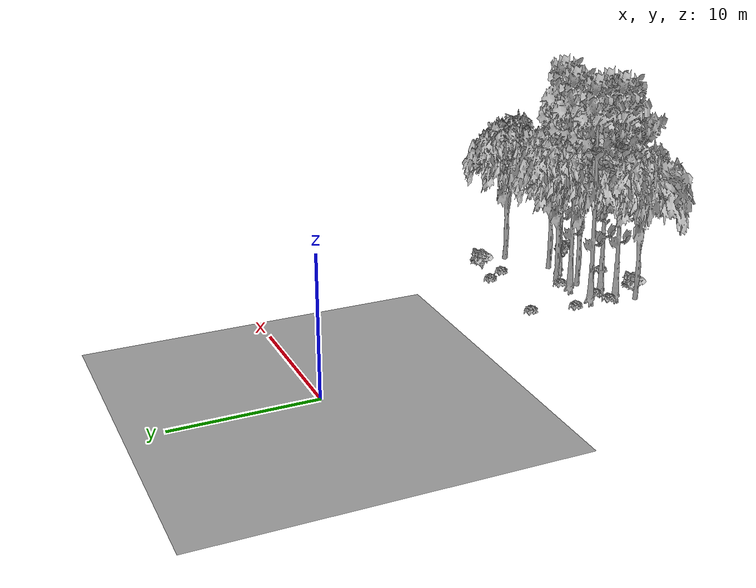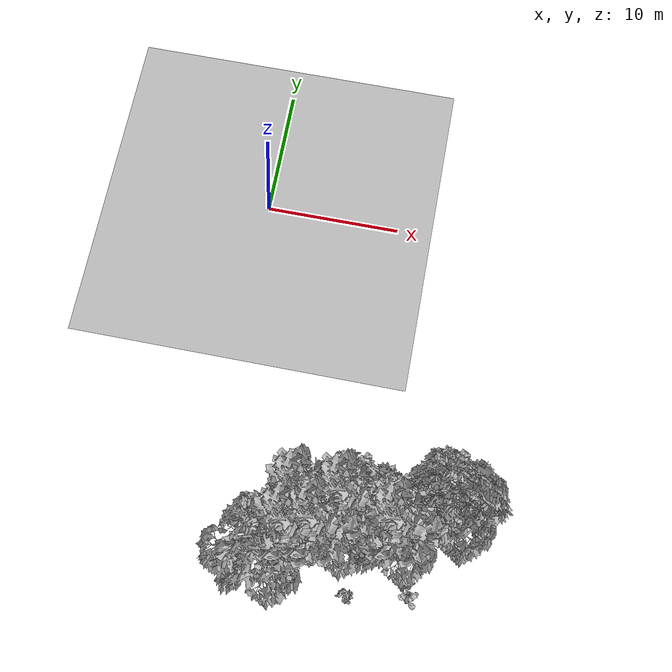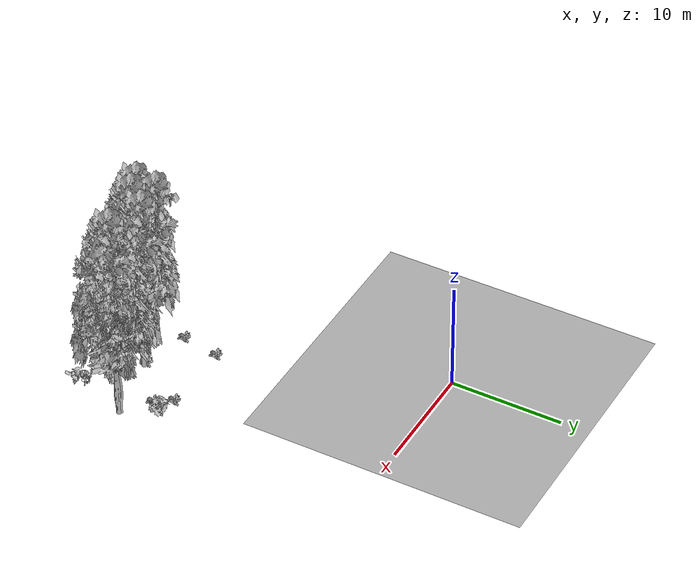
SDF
<sdf version="1.7">
 <world name="default">
  <model name="ground_plane">
   <static>1</static>
   <link name="link">
    <collision name="collision">
     <pose>-50 0 0 0 -0 0</pose>
     <geometry><plane><normal>0 0 1</normal><size>80 80</size></plane></geometry>
     <surface><contact><ode><min_depth>0.01</min_depth><max_vel>0</max_vel></ode></contact></surface>
    </collision>
    <visual name="grass">
     <cast_shadows>0</cast_shadows>
     <geometry>
      <mesh>
       <scale>0.46714285714285714 0.46714285714285714 0.1</scale>
       <uri>file://grass_plane/meshes/grass_plane.dae</uri>
      </mesh>
     </geometry>
    </visual>
   </link>
  </model>
  <model name="Tree 2">
   <static>1</static>
   <pose>12.744392342214496 -25.10153390467923 0 1.57079 -0 0</pose>
   <link name="link">
    <collision name="collision">
     <geometry><mesh><scale>3.5 5 3.5</scale><uri>model://tree_9/meshes/tree_9.obj</uri></mesh></geometry>
    </collision>
    <visual name="visual">
     <geometry><mesh><scale>3.5 5 3.5</scale><uri>model://tree_9/meshes/tree_9.obj</uri></mesh></geometry>
    </visual>
   </link>
  </model>
  <model name="Tree 11">
   <static>1</static>
   <pose>16.34194853640159 -22.23036959908649 0 1.57079 -0 0</pose>
   <link name="link">
    <collision name="collision">
     <geometry><mesh><scale>3.5 5 3.5</scale><uri>model://tree_2/meshes/tree_2.obj</uri></mesh></geometry>
    </collision>
    <visual name="visual">
     <geometry><mesh><scale>3.5 5 3.5</scale><uri>model://tree_2/meshes/tree_2.obj</uri></mesh></geometry>
    </visual>
   </link>
  </model>
  <model name="Tree 13">
   <static>1</static>
   <pose>10.382277022149914 -23.49084186077171 0 1.57079 -0 0</pose>
   <link name="link">
    <collision name="collision">
     <geometry><mesh><scale>3.5 5 3.5</scale><uri>model://tree_2/meshes/tree_2.obj</uri></mesh></geometry>
    </collision>
    <visual name="visual">
     <geometry><mesh><scale>3.5 5 3.5</scale><uri>model://tree_2/meshes/tree_2.obj</uri></mesh></geometry>
    </visual>
   </link>
  </model>
  <model name="Tree 47">
   <static>1</static>
   <pose>7.984489069863258 -25.958848382439346 0 1.57079 -0 0</pose>
   <link name="link">
    <collision name="collision">
     <geometry><mesh><scale>3.5 5 3.5</scale><uri>model://tree_9/meshes/tree_9.obj</uri></mesh></geometry>
    </collision>
    <visual name="visual">
     <geometry><mesh><scale>3.5 5 3.5</scale><uri>model://tree_9/meshes/tree_9.obj</uri></mesh></geometry>
    </visual>
   </link>
  </model>
  <model name="Tree 90">
   <static>1</static>
   <pose>12.962560495693587 -24.341436144492626 0 1.57079 -0 0</pose>
   <link name="link">
    <collision name="collision">
     <geometry><mesh><scale>3.5 5 3.5</scale><uri>model://tree_2/meshes/tree_2.obj</uri></mesh></geometry>
    </collision>
    <visual name="visual">
     <geometry><mesh><scale>3.5 5 3.5</scale><uri>model://tree_2/meshes/tree_2.obj</uri></mesh></geometry>
    </visual>
   </link>
  </model>
  <model name="Tree 128">
   <static>1</static>
   <pose>6.838387620289794 -24.32918038902857 0 1.57079 -0 0</pose>
   <link name="link">
    <collision name="collision">
     <geometry><mesh><scale>3.5 5 3.5</scale><uri>model://tree_9/meshes/tree_9.obj</uri></mesh></geometry>
    </collision>
    <visual name="visual">
     <geometry><mesh><scale>3.5 5 3.5</scale><uri>model://tree_9/meshes/tree_9.obj</uri></mesh></geometry>
    </visual>
   </link>
  </model>
  <model name="Tree 174">
   <static>1</static>
   <pose>16.169937500175777 -22.142156906037663 0 1.57079 -0 0</pose>
   <link name="link">
    <collision name="collision">
     <geometry><mesh><scale>3.5 5 3.5</scale><uri>model://tree_2/meshes/tree_2.obj</uri></mesh></geometry>
    </collision>
    <visual name="visual">
     <geometry><mesh><scale>3.5 5 3.5</scale><uri>model://tree_2/meshes/tree_2.obj</uri></mesh></geometry>
    </visual>
   </link>
  </model>
  <model name="Tree 244">
   <static>1</static>
   <pose>9.441068146485385 -24.106463783590986 0 1.57079 -0 0</pose>
   <link name="link">
    <collision name="collision">
     <geometry><mesh><scale>3.5 5 3.5</scale><uri>model://tree_9/meshes/tree_9.obj</uri></mesh></geometry>
    </collision>
    <visual name="visual">
     <geometry><mesh><scale>3.5 5 3.5</scale><uri>model://tree_9/meshes/tree_9.obj</uri></mesh></geometry>
    </visual>
   </link>
  </model>
  <model name="Tree 333">
   <static>1</static>
   <pose>9.058644269067315 -24.56449136654748 0 1.57079 -0 0</pose>
   <link name="link">
    <collision name="collision">
     <geometry><mesh><scale>3.5 5 3.5</scale><uri>model://tree_2/meshes/tree_2.obj</uri></mesh></geometry>
    </collision>
    <visual name="visual">
     <geometry><mesh><scale>3.5 5 3.5</scale><uri>model://tree_2/meshes/tree_2.obj</uri></mesh></geometry>
    </visual>
   </link>
  </model>
  <model name="Tree 579">
   <static>1</static>
   <pose>6.544877035802159 -26.361521125193335 0 1.57079 -0 0</pose>
   <link name="link">
    <collision name="collision">
     <geometry><mesh><scale>3.5 5 3.5</scale><uri>model://tree_9/meshes/tree_9.obj</uri></mesh></geometry>
    </collision>
    <visual name="visual">
     <geometry><mesh><scale>3.5 5 3.5</scale><uri>model://tree_9/meshes/tree_9.obj</uri></mesh></geometry>
    </visual>
   </link>
  </model>
  <model name="Tree 591">
   <static>1</static>
   <pose>4.987603174621704 -27.198433542513307 0 1.57079 -0 0</pose>
   <link name="link">
    <collision name="collision">
     <geometry><mesh><scale>3.5 5 3.5</scale><uri>model://tree_2/meshes/tree_2.obj</uri></mesh></geometry>
    </collision>
    <visual name="visual">
     <geometry><mesh><scale>3.5 5 3.5</scale><uri>model://tree_2/meshes/tree_2.obj</uri></mesh></geometry>
    </visual>
   </link>
  </model>
  <model name="Bush 173">
   <static>1</static>
   <pose>12.864099585674701 -19.053627420941837 0 1.57079 -0 0</pose>
   <link name="link">
    <collision name="collision">
     <geometry><mesh><scale>2 2 2</scale><uri>model://bush_2/meshes/bush_2.obj</uri></mesh></geometry>
     <surface><contact><collide_without_contact>false</collide_without_contact></contact></surface>
    </collision>
    <visual name="visual">
     <geometry><mesh><scale>2 2 2</scale><uri>model://bush_2/meshes/bush_2.obj</uri></mesh></geometry>
    </visual>
   </link>
  </model>
  <model name="Bush 202">
   <static>1</static>
   <pose>15.014247592786695 -19.391873009852105 0 1.57079 -0 0</pose>
   <link name="link">
    <collision name="collision">
     <geometry><mesh><scale>2 2 2</scale><uri>model://bush_1/meshes/bush_1.obj</uri></mesh></geometry>
     <surface><contact><collide_without_contact>false</collide_without_contact></contact></surface>
    </collision>
    <visual name="visual">
     <geometry><mesh><scale>2 2 2</scale><uri>model://bush_1/meshes/bush_1.obj</uri></mesh></geometry>
    </visual>
   </link>
  </model>
  <model name="Bush 236">
   <static>1</static>
   <pose>5.862133042076415 -25.402072783838126 0 1.57079 -0 0</pose>
   <link name="link">
    <collision name="collision">
     <geometry><mesh><scale>2 2 2</scale><uri>model://bush_2/meshes/bush_2.obj</uri></mesh></geometry>
     <surface><contact><collide_without_contact>false</collide_without_contact></contact></surface>
    </collision>
    <visual name="visual">
     <geometry><mesh><scale>2 2 2</scale><uri>model://bush_2/meshes/bush_2.obj</uri></mesh></geometry>
    </visual>
   </link>
  </model>
  <model name="Bush 253">
   <static>1</static>
   <pose>9.882112323584522 -23.54231057410436 0 1.57079 -0 0</pose>
   <link name="link">
    <collision name="collision">
     <geometry><mesh><scale>2 2 2</scale><uri>model://bush_2/meshes/bush_2.obj</uri></mesh></geometry>
     <surface><contact><collide_without_contact>false</collide_without_contact></contact></surface>
    </collision>
    <visual name="visual">
     <geometry><mesh><scale>2 2 2</scale><uri>model://bush_2/meshes/bush_2.obj</uri></mesh></geometry>
    </visual>
   </link>
  </model>
  <model name="Bush 279">
   <static>1</static>
   <pose>6.308388783128059 -18.971969379460685 0 1.57079 -0 0</pose>
   <link name="link">
    <collision name="collision">
     <geometry><mesh><scale>2 2 2</scale><uri>model://bush_2/meshes/bush_2.obj</uri></mesh></geometry>
     <surface><contact><collide_without_contact>false</collide_without_contact></contact></surface>
    </collision>
    <visual name="visual">
     <geometry><mesh><scale>2 2 2</scale><uri>model://bush_2/meshes/bush_2.obj</uri></mesh></geometry>
    </visual>
   </link>
  </model>
  <model name="Bush 301">
   <static>1</static>
   <pose>7.100841650077122 -24.96152828384521 0 1.57079 -0 0</pose>
   <link name="link">
    <collision name="collision">
     <geometry><mesh><scale>2 2 2</scale><uri>model://bush_2/meshes/bush_2.obj</uri></mesh></geometry>
     <surface><contact><collide_without_contact>false</collide_without_contact></contact></surface>
    </collision>
    <visual name="visual">
     <geometry><mesh><scale>2 2 2</scale><uri>model://bush_2/meshes/bush_2.obj</uri></mesh></geometry>
    </visual>
   </link>
  </model>
  <model name="Bush 399">
   <static>1</static>
   <pose>14.60109947342955 -26.512040462163817 0 1.57079 -0 0</pose>
   <link name="link">
    <collision name="collision">
     <geometry><mesh><scale>2 2 2</scale><uri>model://bush_4/meshes/bush_4.obj</uri></mesh></geometry>
     <surface><contact><collide_without_contact>false</collide_without_contact></contact></surface>
    </collision>
    <visual name="visual">
     <geometry><mesh><scale>2 2 2</scale><uri>model://bush_4/meshes/bush_4.obj</uri></mesh></geometry>
    </visual>
   </link>
  </model>
  <model name="Bush 423">
   <static>1</static>
   <pose>15.15129815013644 -27.269312132755744 0 1.57079 -0 0</pose>
   <link name="link">
    <collision name="collision">
     <geometry><mesh><scale>2 2 2</scale><uri>model://bush_0/meshes/bush_0.obj</uri></mesh></geometry>
     <surface><contact><collide_without_contact>false</collide_without_contact></contact></surface>
    </collision>
    <visual name="visual">
     <geometry><mesh><scale>2 2 2</scale><uri>model://bush_0/meshes/bush_0.obj</uri></mesh></geometry>
    </visual>
   </link>
  </model>
  <model name="Bush 452">
   <static>1</static>
   <pose>10.83828504325735 -27.84330242854469 0 1.57079 -0 0</pose>
   <link name="link">
    <collision name="collision">
     <geometry><mesh><scale>2 2 2</scale><uri>model://bush_2/meshes/bush_2.obj</uri></mesh></geometry>
     <surface><contact><collide_without_contact>false</collide_without_contact></contact></surface>
    </collision>
    <visual name="visual">
     <geometry><mesh><scale>2 2 2</scale><uri>model://bush_2/meshes/bush_2.obj</uri></mesh></geometry>
    </visual>
   </link>
  </model>
  <model name="Bush 548">
   <static>1</static>
   <pose>5.6853314267102135 -22.417798615222956 0 1.57079 -0 0</pose>
   <link name="link">
    <collision name="collision">
     <geometry><mesh><scale>2 2 2</scale><uri>model://bush_2/meshes/bush_2.obj</uri></mesh></geometry>
     <surface><contact><collide_without_contact>false</collide_without_contact></contact></surface>
    </collision>
    <visual name="visual">
     <geometry><mesh><scale>2 2 2</scale><uri>model://bush_2/meshes/bush_2.obj</uri></mesh></geometry>
    </visual>
   </link>
  </model>
  <model name="Bush 581">
   <static>1</static>
   <pose>13.833702167424264 -20.520416871407498 0 1.57079 -0 0</pose>
   <link name="link">
    <collision name="collision">
     <geometry><mesh><scale>2 2 2</scale><uri>model://bush_2/meshes/bush_2.obj</uri></mesh></geometry>
     <surface><contact><collide_without_contact>false</collide_without_contact></contact></surface>
    </collision>
    <visual name="visual">
     <geometry><mesh><scale>2 2 2</scale><uri>model://bush_2/meshes/bush_2.obj</uri></mesh></geometry>
    </visual>
   </link>
  </model>
  <model name="Bush 625">
   <static>1</static>
   <pose>6.04031418595693 -27.72607002778191 0 1.57079 -0 0</pose>
   <link name="link">
    <collision name="collision">
     <geometry><mesh><scale>2 2 2</scale><uri>model://bush_1/meshes/bush_1.obj</uri></mesh></geometry>
     <surface><contact><collide_without_contact>false</collide_without_contact></contact></surface>
    </collision>
    <visual name="visual">
     <geometry><mesh><scale>2 2 2</scale><uri>model://bush_1/meshes/bush_1.obj</uri></mesh></geometry>
    </visual>
   </link>
  </model>
 </world>
</sdf>
